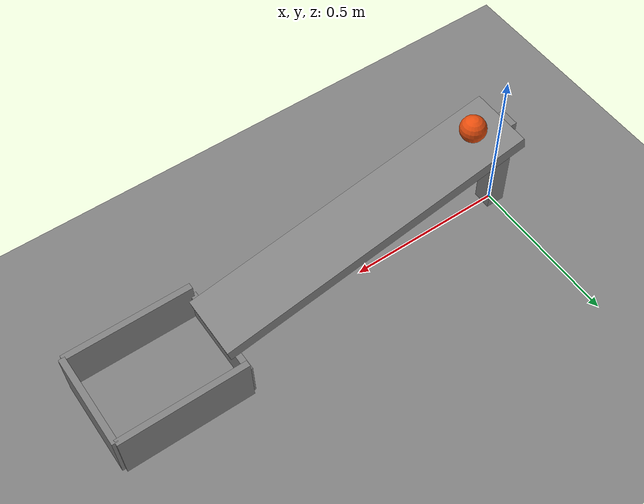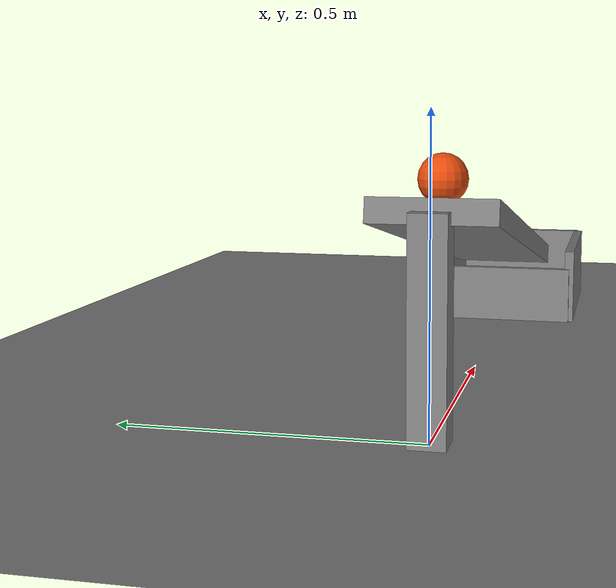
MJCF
<mujoco model="ball_down_a_ramp_into_a_cup">
  <compiler angle="radian"/>
  <option timestep="0.002"/>
  <worldbody>
    <geom name="floor" type="plane" size="4 4 0.1" friction="0.8 0.005 0.002"/>
    <body name="ramp">
      <geom name="ramp_deck" type="box" pos="0.5 0 0.25" size="0.509902 0.1 0.02" euler="0 0.197396 0"/>
      <geom name="ramp_leg" type="box" pos="0 0 0.175" size="0.03 0.03 0.175"/>
    </body>
    <body name="cup">
      <geom name="cup_base" type="box" pos="1.17 0 0.01" size="0.2 0.15 0.01"/>
      <geom name="cup_near_wall" type="box" pos="0.97 0 0.06" size="0.01 0.15 0.06"/>
      <geom name="cup_far_wall" type="box" pos="1.37 0 0.08" size="0.01 0.15 0.08"/>
      <geom name="cup_left_wall" type="box" pos="1.17 0.15 0.08" size="0.2 0.01 0.08"/>
      <geom name="cup_right_wall" type="box" pos="1.17 -0.15 0.08" size="0.2 0.01 0.08"/>
    </body>
    <body name="ball" pos="0.109825 0 0.389223">
      <freejoint/>
      <geom name="ball" type="sphere" pos="0 0 0" size="0.04" mass="0.1" condim="6" friction="0.9 0.005 0.002" solref="0.01 1" rgba="0.9 0.3 0.05 1"/>
    </body>
  </worldbody>
  <keyframe>
    <key name="start" qpos="0.109825 0 0.389223 1 0 0 0" qvel="0 0 0 0 0 0"/>
  </keyframe>
</mujoco>
